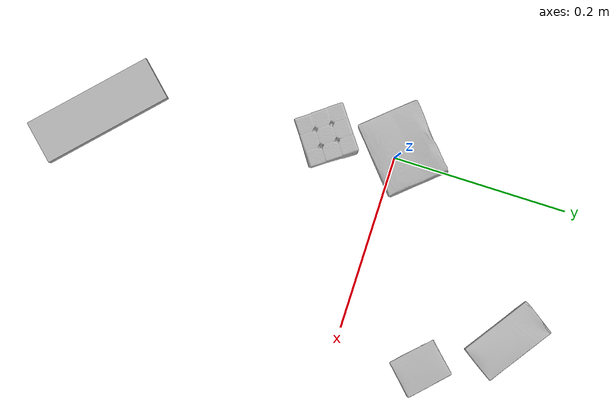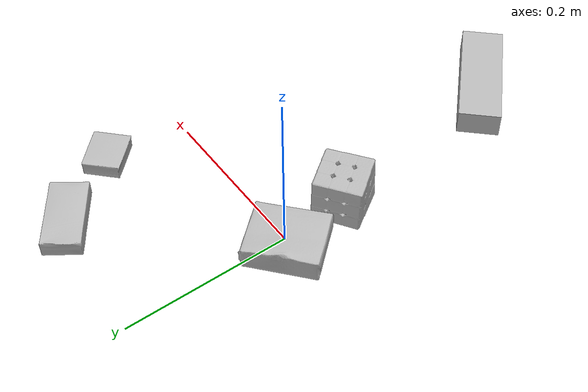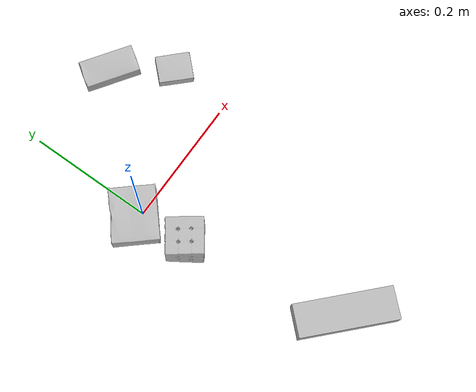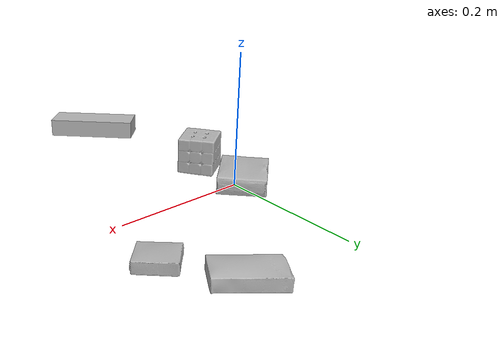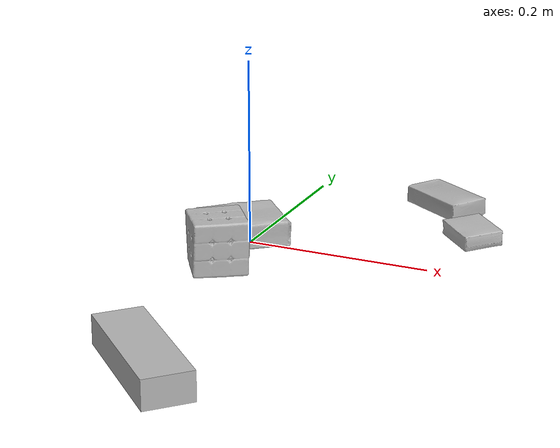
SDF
<sdf version="1.4">
  <world name="default">
    <light name="light1" type="point">
      <pose>0 0 1 0 0 0</pose>
      <diffuse>3 3 3 1</diffuse>
      <specular>3 3 3 1</specular>
    </light>
    <light name="light2" type="point">
      <pose>0 0.5 2 0 0 0</pose>
      <diffuse>1 1 1 1</diffuse>
      <specular>1 1 1 1</specular>
    </light>
    <light name="light3" type="point">
      <pose>0 0.5 2 0 0 0</pose>
      <diffuse>3 3 3 1</diffuse>
      <specular>3 3 3 1</specular>
    </light>
    <scene>
      <ambient>0.7 0.7 0.7</ambient>
    </scene>
    <model name="box1">
      <link name="link_box1">
        <collision name="default">
          <geometry>
            <mesh>
              <uri>model://jenga/collision_meshes/collision.obj</uri>
              <scale>1.0 1.0 1.0</scale>
            </mesh>
          </geometry>
          <surface>
            <friction>
              <ode>
                <mu>0.5</mu>
                <mu2>0.5</mu2>
              </ode>
            </friction>
          <contact>
        <ode>
            <max_vel>0</max_vel>
            <min_depth>0.0001</min_depth>
            <kp>1e8</kp>
        </ode>
    </contact></surface>
        </collision>
        <visual name="default">
          <geometry>
            <mesh>
              <uri>model://jenga/visual_meshes/visual.dae</uri>
              <scale>1.0 1.0 1.0</scale>
            </mesh>
          </geometry>
        </visual>
        <inertial>
          <mass>0.28879067301750183</mass>
          <pose>-2.502855807051674e-07 -0.00010250010382151231 -4.0923401684267446e-05 0.0 -7.342154049184251e-07 0.0</pose>
          <inertia>
            <ixx>7.991539e-05</ixx>
            <iyy>0.00054150453</iyy>
            <izz>0.00057810213</izz>
            <ixy>0</ixy>
            <ixz>0</ixz>
            <iyz>0</iyz>
          </inertia>
        </inertial>
      </link>
      <pose>0.05009264498949051 -0.33073925971984863 0.014999995939433575 -1.1288121814611706e-08 1.5497855131965124e-09 -0.7657231850399847</pose>
    </model>
    <model name="box2">
      <link name="link_box2">
        <collision name="default">
          <geometry>
            <mesh>
              <uri>model://sugar_box/collision_meshes/collision.obj</uri>
              <scale>0.5 0.5 0.5</scale>
            </mesh>
          </geometry>
          <surface>
            <friction>
              <ode>
                <mu>0.5</mu>
                <mu2>0.5</mu2>
              </ode>
            </friction>
          <contact>
        <ode>
            <max_vel>0</max_vel>
            <min_depth>0.0001</min_depth>
            <kp>1e8</kp>
        </ode>
    </contact></surface>
        </collision>
        <visual name="default">
          <geometry>
            <mesh>
              <uri>model://sugar_box/visual_meshes/visual.dae</uri>
              <scale>0.5 0.5 0.5</scale>
            </mesh>
          </geometry>
        </visual>
        <inertial>
          <mass>0.10389333218336105</mass>
          <pose>0.000517186417710036 1.9245549992774613e-05 -0.00018182402709499002 -0.00040462615469338603 0.0010506637547558321 0.0026153785561208315</pose>
          <inertia>
            <ixx>2.1640906e-05</ixx>
            <iyy>6.994788e-05</iyy>
            <izz>8.373595e-05</izz>
            <ixy>0</ixy>
            <ixz>0</ixz>
            <iyz>0</iyz>
          </inertia>
        </inertial>
      </link>
      <pose>0.15742602944374084 0.1822763979434967 0.011399299837648869 0.0007755551317922732 -0.023433288236628696 -0.6107854018183458</pose>
    </model>
    <model name="box3">
      <link name="link_box3">
        <collision name="default">
          <geometry>
            <mesh>
              <uri>model://rubiks_cube/collision_meshes/collision.obj</uri>
              <scale>1.0 1.0 1.0</scale>
            </mesh>
          </geometry>
          <surface>
            <friction>
              <ode>
                <mu>0.5</mu>
                <mu2>0.5</mu2>
              </ode>
            </friction>
          <contact>
        <ode>
            <max_vel>0</max_vel>
            <min_depth>0.0001</min_depth>
            <kp>1e8</kp>
        </ode>
    </contact></surface>
        </collision>
        <visual name="default">
          <geometry>
            <mesh>
              <uri>model://rubiks_cube/visual_meshes/visual.dae</uri>
              <scale>1.0 1.0 1.0</scale>
            </mesh>
          </geometry>
        </visual>
        <inertial>
          <mass>0.21973572671413422</mass>
          <pose>2.6721041649580002e-05 5.256966323941015e-05 -7.264316082000732e-06 -0.054673783840129137 -0.09814154164948871 -0.03445565380518822</pose>
          <inertia>
            <ixx>0.00012141874</ixx>
            <iyy>0.000120852514</iyy>
            <izz>0.00012242487</izz>
            <ixy>0</ixy>
            <ixz>0</ixz>
            <iyz>0</iyz>
          </inertia>
        </inertial>
      </link>
      <pose>0.0006940153543837368 -0.07976707071065903 0.02867896668612957 -3.0232919117710777e-06 -9.546274725540363e-07 2.1946213291643297</pose>
    </model>
    <model name="box4">
      <link name="link_box4">
        <collision name="default">
          <geometry>
            <mesh>
              <uri>model://pudding_box/collision_meshes/collision.obj</uri>
              <scale>0.5 0.5 0.5</scale>
            </mesh>
          </geometry>
          <surface>
            <friction>
              <ode>
                <mu>0.5</mu>
                <mu2>0.5</mu2>
              </ode>
            </friction>
          <contact>
        <ode>
            <max_vel>0</max_vel>
            <min_depth>0.0001</min_depth>
            <kp>1e8</kp>
        </ode>
    </contact></surface>
        </collision>
        <visual name="default">
          <geometry>
            <mesh>
              <uri>model://pudding_box/visual_meshes/visual.dae</uri>
              <scale>0.5 0.5 0.5</scale>
            </mesh>
          </geometry>
        </visual>
        <inertial>
          <mass>0.0391676165163517</mass>
          <pose>0.00024474109522998333 0.00040339428232982755 -0.0002594413817860186 0.005213101313254789 -0.0066037982630024914 0.020079830751203582</pose>
          <inertia>
            <ixx>1.1069244e-05</ixx>
            <iyy>7.447467e-06</iyy>
            <izz>1.634663e-05</izz>
            <ixy>0</ixy>
            <ixz>0</ixz>
            <iyz>0</iyz>
          </inertia>
        </inertial>
      </link>
      <pose>0.2160932421684265 0.09839065372943878 0.00986290443688631 0.02234812106420791 -0.0113920172113703 0.7953247935819878</pose>
    </model>
    <model name="box5">
      <link name="link_box5">
        <collision name="default">
          <geometry>
            <mesh>
              <uri>model://gelatin_box/collision_meshes/collision.obj</uri>
              <scale>1.0 1.0 1.0</scale>
            </mesh>
          </geometry>
          <surface>
            <friction>
              <ode>
                <mu>0.5</mu>
                <mu2>0.5</mu2>
              </ode>
            </friction>
          <contact>
        <ode>
            <max_vel>0</max_vel>
            <min_depth>0.0001</min_depth>
            <kp>1e8</kp>
        </ode>
    </contact></surface>
        </collision>
        <visual name="default">
          <geometry>
            <mesh>
              <uri>model://gelatin_box/visual_meshes/visual.dae</uri>
              <scale>1.0 1.0 1.0</scale>
            </mesh>
          </geometry>
        </visual>
        <inertial>
          <mass>0.24157556891441345</mass>
          <pose>0.0004319618456065655 0.00011156872642459348 -0.0003640321083366871 -0.0010503718658393805 -0.0047558177571565665 0.016440565059328244</pose>
          <inertia>
            <ixx>0.00017053263</ixx>
            <iyy>0.00012181056</iyy>
            <izz>0.00025958868</izz>
            <ixy>0</ixy>
            <ixz>0</ixz>
            <iyz>0</iyz>
          </inertia>
        </inertial>
      </link>
      <pose>-0.011668480932712555 0.005835835821926594 0.015168308280408382 0.005597493466293229 -0.0073045688726473 2.2813814814697304</pose>
    </model>
  <physics type="ode">
      <max_contacts>50</max_contacts>
      <ode>
        <solver>
          <type>quick</type>
          <iters>75</iters>
        </solver>
        <constraints>
          <contact_max_correcting_vel>0</contact_max_correcting_vel>
          <contact_surface_layer>0</contact_surface_layer>
        </constraints>
      </ode>
    </physics></world>
</sdf>
